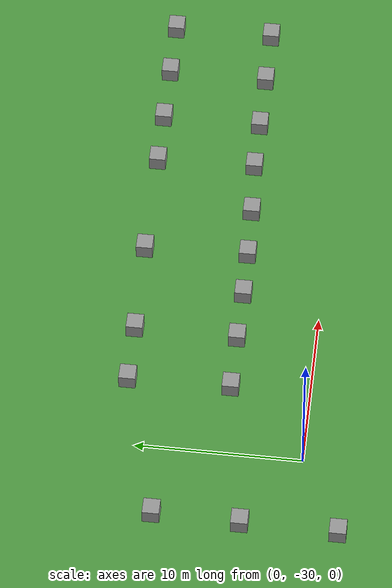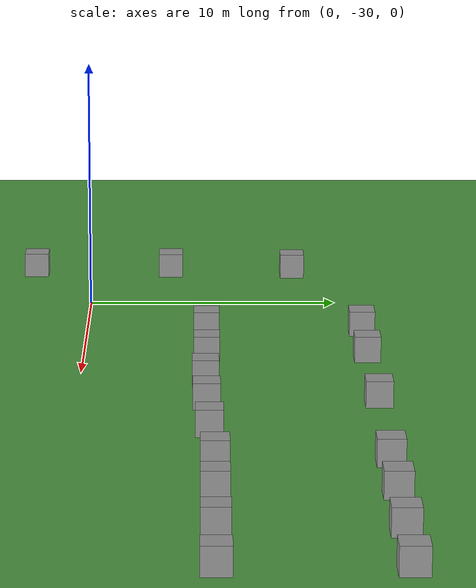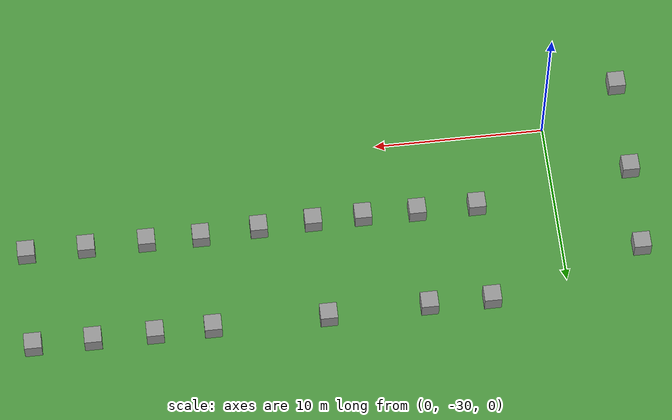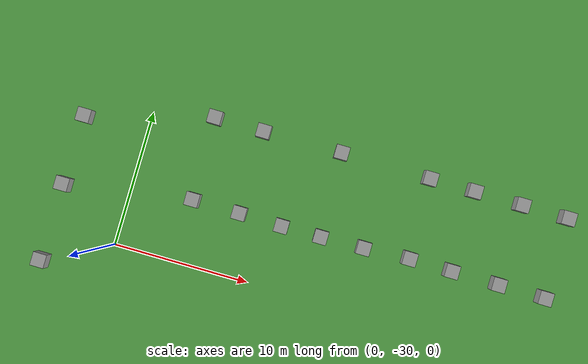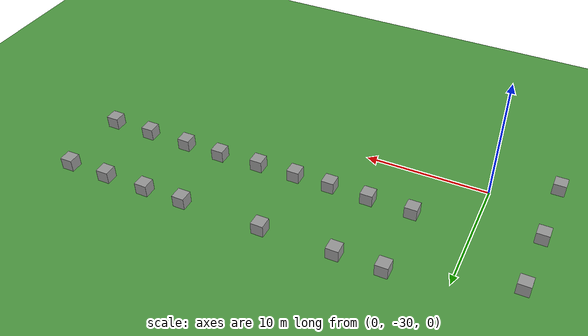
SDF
<sdf version="1.4">
 <world name="default">
  <model name="ground_plane">
   <static>1</static>
   <link name="link">
    <collision name="collision">
     <geometry><plane><normal>0 0 1</normal><size>10000 10000</size></plane></geometry>
     <surface><friction><ode><mu>100</mu><mu2>50</mu2></ode></friction></surface>
    </collision>
    <visual name="visual">
     <cast_shadows>0</cast_shadows>
     <geometry><plane><normal>0 0 1</normal><size>10000 10000</size></plane></geometry>
     <material>
      <script>
       <uri>model://ds_grass_background/materials/scripts</uri>
       <uri>model://ds_grass_background/materials/textures</uri>
       <name>GrassBackground</name>
      </script>
     </material>
    </visual>
    <velocity_decay><linear>0</linear><angular>0</angular></velocity_decay>
   </link>
  </model>
  <model name="unit_box_13">
   <pose>4.50785 -19.0975 0.5 0 -0 0</pose>
   <link name="link">
    <inertial>
     <mass>1</mass>
     <inertia><ixx>1</ixx><ixy>0</ixy><ixz>0</ixz><iyy>1</iyy><iyz>0</iyz><izz>1</izz></inertia>
    </inertial>
    <collision name="collision"><geometry><box><size>2.00438 3.93881 1</size></box></geometry></collision>
    <visual name="visual">
     <geometry><box><size>1 1 1</size></box></geometry>
     <material>
      <script><uri>file://media/materials/scripts/gazebo.material</uri><name>Gazebo/Grey</name></script>
     </material>
    </visual>
    <velocity_decay><linear>0</linear><angular>0</angular></velocity_decay>
   </link>
   <static>0</static>
  </model>
  <model name="unit_box_14">
   <pose>8.15949 -19.0902 0.5 0 -0 0</pose>
   <link name="link">
    <inertial>
     <mass>1</mass>
     <inertia><ixx>1</ixx><ixy>0</ixy><ixz>0</ixz><iyy>1</iyy><iyz>0</iyz><izz>1</izz></inertia>
    </inertial>
    <collision name="collision"><geometry><box><size>2.17638 3.82082 1</size></box></geometry></collision>
    <visual name="visual">
     <geometry><box><size>1 1 1</size></box></geometry>
     <material>
      <script><uri>file://media/materials/scripts/gazebo.material</uri><name>Gazebo/Grey</name></script>
     </material>
    </visual>
    <velocity_decay><linear>0</linear><angular>0</angular></velocity_decay>
   </link>
   <static>0</static>
  </model>
  <model name="unit_box_15">
   <pose>14 -19 0.5 0 -0 0</pose>
   <link name="link">
    <inertial>
     <mass>1</mass>
     <inertia><ixx>1</ixx><ixy>0</ixy><ixz>0</ixz><iyy>1</iyy><iyz>0</iyz><izz>1</izz></inertia>
    </inertial>
    <collision name="collision"><geometry><box><size>2.06333 3.7865 1</size></box></geometry></collision>
    <visual name="visual">
     <geometry><box><size>1 1 1</size></box></geometry>
     <material>
      <script><uri>file://media/materials/scripts/gazebo.material</uri><name>Gazebo/Grey</name></script>
     </material>
    </visual>
    <velocity_decay><linear>0</linear><angular>0</angular></velocity_decay>
   </link>
   <static>0</static>
  </model>
  <model name="unit_box_17">
   <pose>20.6639 -19.015 0.5 0 -0 0</pose>
   <link name="link">
    <inertial>
     <mass>1</mass>
     <inertia><ixx>1</ixx><ixy>0</ixy><ixz>0</ixz><iyy>1</iyy><iyz>0</iyz><izz>1</izz></inertia>
    </inertial>
    <collision name="collision"><geometry><box><size>2.25325 3.65217 1</size></box></geometry></collision>
    <visual name="visual">
     <geometry><box><size>1 1 1</size></box></geometry>
     <material>
      <script><uri>file://media/materials/scripts/gazebo.material</uri><name>Gazebo/Grey</name></script>
     </material>
    </visual>
    <velocity_decay><linear>0</linear><angular>0</angular></velocity_decay>
   </link>
   <static>0</static>
  </model>
  <model name="unit_box_18">
   <pose>24 -19 0.5 -0 -0 -0</pose>
   <link name="link">
    <inertial>
     <mass>1</mass>
     <inertia><ixx>1</ixx><ixy>0</ixy><ixz>0</ixz><iyy>1</iyy><iyz>0</iyz><izz>1</izz></inertia>
    </inertial>
    <collision name="collision"><geometry><box><size>2.33583 3.45833 1</size></box></geometry></collision>
    <visual name="visual">
     <geometry><box><size>1 1 1</size></box></geometry>
     <material>
      <script><uri>file://media/materials/scripts/gazebo.material</uri><name>Gazebo/Grey</name></script>
     </material>
    </visual>
    <velocity_decay><linear>0</linear><angular>0</angular></velocity_decay>
   </link>
   <static>0</static>
  </model>
  <model name="unit_box_19">
   <pose>27.5635 -19 0.5 0 -0 0</pose>
   <link name="link">
    <inertial>
     <mass>1</mass>
     <inertia><ixx>1</ixx><ixy>0</ixy><ixz>0</ixz><iyy>1</iyy><iyz>0</iyz><izz>1</izz></inertia>
    </inertial>
    <collision name="collision"><geometry><box><size>2.29132 3.43309 1</size></box></geometry></collision>
    <visual name="visual">
     <geometry><box><size>1 1 1</size></box></geometry>
     <material>
      <script><uri>file://media/materials/scripts/gazebo.material</uri><name>Gazebo/Grey</name></script>
     </material>
    </visual>
    <velocity_decay><linear>0</linear><angular>0</angular></velocity_decay>
   </link>
   <static>0</static>
  </model>
  <model name="unit_box_20">
   <pose>31 -19 0.5 -0 -0 -0</pose>
   <link name="link">
    <inertial>
     <mass>1</mass>
     <inertia><ixx>1</ixx><ixy>0</ixy><ixz>0</ixz><iyy>1</iyy><iyz>0</iyz><izz>1</izz></inertia>
    </inertial>
    <collision name="collision"><geometry><box><size>2.31816 3.40072 1</size></box></geometry></collision>
    <visual name="visual">
     <geometry><box><size>1 1 1</size></box></geometry>
     <material>
      <script><uri>file://media/materials/scripts/gazebo.material</uri><name>Gazebo/Grey</name></script>
     </material>
    </visual>
    <velocity_decay><linear>0</linear><angular>0</angular></velocity_decay>
   </link>
   <static>0</static>
  </model>
  <model name="unit_box_36">
   <pose>4.58657 -25.251 0.5 -0 -0 -0</pose>
   <link name="link">
    <inertial>
     <mass>1</mass>
     <inertia><ixx>1</ixx><ixy>0</ixy><ixz>0</ixz><iyy>1</iyy><iyz>0</iyz><izz>1</izz></inertia>
    </inertial>
    <collision name="collision"><geometry><box><size>1.94371 3.61589 1</size></box></geometry></collision>
    <visual name="visual">
     <geometry><box><size>1 1 1</size></box></geometry>
     <material>
      <script><uri>file://media/materials/scripts/gazebo.material</uri><name>Gazebo/Grey</name></script>
     </material>
    </visual>
    <velocity_decay><linear>0</linear><angular>0</angular></velocity_decay>
   </link>
   <static>0</static>
  </model>
  <model name="unit_box_37">
   <pose>8.10312 -25.253 0.5 0 -0 0</pose>
   <link name="link">
    <inertial>
     <mass>1</mass>
     <inertia><ixx>1</ixx><ixy>0</ixy><ixz>0</ixz><iyy>1</iyy><iyz>0</iyz><izz>1</izz></inertia>
    </inertial>
    <collision name="collision"><geometry><box><size>2.25009 3.86642 1</size></box></geometry></collision>
    <visual name="visual">
     <geometry><box><size>1 1 1</size></box></geometry>
     <material>
      <script><uri>file://media/materials/scripts/gazebo.material</uri><name>Gazebo/Grey</name></script>
     </material>
    </visual>
    <velocity_decay><linear>0</linear><angular>0</angular></velocity_decay>
   </link>
   <static>0</static>
  </model>
  <model name="unit_box_38">
   <pose>11.2953 -25.2988 0.5 0 -0 0</pose>
   <link name="link">
    <inertial>
     <mass>1</mass>
     <inertia><ixx>1</ixx><ixy>0</ixy><ixz>0</ixz><iyy>1</iyy><iyz>0</iyz><izz>1</izz></inertia>
    </inertial>
    <collision name="collision"><geometry><box><size>1.96006 3.82266 1</size></box></geometry></collision>
    <visual name="visual">
     <geometry><box><size>1 1 1</size></box></geometry>
     <material>
      <script><uri>file://media/materials/scripts/gazebo.material</uri><name>Gazebo/Grey</name></script>
     </material>
    </visual>
    <velocity_decay><linear>0</linear><angular>0</angular></velocity_decay>
   </link>
   <static>0</static>
  </model>
  <model name="unit_box_39">
   <pose>14.2245 -25.2621 0.5 0 -0 0</pose>
   <link name="link">
    <inertial>
     <mass>1</mass>
     <inertia><ixx>1</ixx><ixy>0</ixy><ixz>0</ixz><iyy>1</iyy><iyz>0</iyz><izz>1</izz></inertia>
    </inertial>
    <collision name="collision"><geometry><box><size>2.10899 3.68755 1</size></box></geometry></collision>
    <visual name="visual">
     <geometry><box><size>1 1 1</size></box></geometry>
     <material>
      <script><uri>file://media/materials/scripts/gazebo.material</uri><name>Gazebo/Grey</name></script>
     </material>
    </visual>
    <velocity_decay><linear>0</linear><angular>0</angular></velocity_decay>
   </link>
   <static>0</static>
  </model>
  <model name="unit_box_40">
   <pose>17.4225 -25.1712 0.5 0 -0 0</pose>
   <link name="link">
    <inertial>
     <mass>1</mass>
     <inertia><ixx>1</ixx><ixy>0</ixy><ixz>0</ixz><iyy>1</iyy><iyz>0</iyz><izz>1</izz></inertia>
    </inertial>
    <collision name="collision"><geometry><box><size>2.28774 3.80927 1</size></box></geometry></collision>
    <visual name="visual">
     <geometry><box><size>1 1 1</size></box></geometry>
     <material>
      <script><uri>file://media/materials/scripts/gazebo.material</uri><name>Gazebo/Grey</name></script>
     </material>
    </visual>
    <velocity_decay><linear>0</linear><angular>0</angular></velocity_decay>
   </link>
   <static>0</static>
  </model>
  <model name="unit_box_41">
   <pose>20.8282 -24.9859 0.499998 0 1e-06 0</pose>
   <link name="link">
    <inertial>
     <mass>1</mass>
     <inertia><ixx>1</ixx><ixy>0</ixy><ixz>0</ixz><iyy>1</iyy><iyz>0</iyz><izz>1</izz></inertia>
    </inertial>
    <collision name="collision"><geometry><box><size>2.35602 3.84235 1</size></box></geometry></collision>
    <visual name="visual">
     <geometry><box><size>1 1 1</size></box></geometry>
     <material>
      <script><uri>file://media/materials/scripts/gazebo.material</uri><name>Gazebo/Grey</name></script>
     </material>
    </visual>
    <velocity_decay><linear>0</linear><angular>0</angular></velocity_decay>
   </link>
   <static>0</static>
  </model>
  <model name="unit_box_53">
   <pose>-4.59248 -21.5838 0.499998 0 1e-06 0</pose>
   <link name="link">
    <inertial>
     <mass>1</mass>
     <inertia><ixx>1</ixx><ixy>0</ixy><ixz>0</ixz><iyy>1</iyy><iyz>0</iyz><izz>1</izz></inertia>
    </inertial>
    <collision name="collision"><geometry><box><size>2.35555 3.83376 1</size></box></geometry></collision>
    <visual name="visual">
     <geometry><box><size>1 1 1</size></box></geometry>
     <material>
      <script><uri>file://media/materials/scripts/gazebo.material</uri><name>Gazebo/Grey</name></script>
     </material>
    </visual>
    <velocity_decay><linear>0</linear><angular>0</angular></velocity_decay>
   </link>
   <static>0</static>
  </model>
  <model name="unit_box_54">
   <pose>-4.72365 -26.7547 0.499994 0 -5e-06 -4e-06</pose>
   <link name="link">
    <inertial>
     <mass>1</mass>
     <inertia><ixx>1</ixx><ixy>0</ixy><ixz>0</ixz><iyy>1</iyy><iyz>0</iyz><izz>1</izz></inertia>
    </inertial>
    <collision name="collision"><geometry><box><size>2.47054 4.45394 1</size></box></geometry></collision>
    <visual name="visual">
     <geometry><box><size>1 1 1</size></box></geometry>
     <material>
      <script><uri>file://media/materials/scripts/gazebo.material</uri><name>Gazebo/Grey</name></script>
     </material>
    </visual>
    <velocity_decay><linear>0</linear><angular>0</angular></velocity_decay>
   </link>
   <static>0</static>
  </model>
  <model name="unit_box_55">
   <pose>-4.78603 -32.4916 0.5 0 -0 0</pose>
   <link name="link">
    <inertial>
     <mass>1</mass>
     <inertia><ixx>1</ixx><ixy>0</ixy><ixz>0</ixz><iyy>1</iyy><iyz>0</iyz><izz>1</izz></inertia>
    </inertial>
    <collision name="collision"><geometry><box><size>2.47823 4.06213 1</size></box></geometry></collision>
    <visual name="visual">
     <geometry><box><size>1 1 1</size></box></geometry>
     <material>
      <script><uri>file://media/materials/scripts/gazebo.material</uri><name>Gazebo/Grey</name></script>
     </material>
    </visual>
    <velocity_decay><linear>0</linear><angular>0</angular></velocity_decay>
   </link>
   <static>0</static>
  </model>
  <model name="unit_box_56">
   <pose>24 -25 0.5 0 -0 0</pose>
   <link name="link">
    <inertial>
     <mass>1</mass>
     <inertia><ixx>1</ixx><ixy>0</ixy><ixz>0</ixz><iyy>1</iyy><iyz>0</iyz><izz>1</izz></inertia>
    </inertial>
    <collision name="collision"><geometry><box><size>2.31866 3.84775 1</size></box></geometry></collision>
    <visual name="visual">
     <geometry><box><size>1 1 1</size></box></geometry>
     <material>
      <script><uri>file://media/materials/scripts/gazebo.material</uri><name>Gazebo/Grey</name></script>
     </material>
    </visual>
    <velocity_decay><linear>0</linear><angular>0</angular></velocity_decay>
   </link>
   <static>0</static>
  </model>
  <model name="unit_box_57">
   <pose>27.5161 -25 0.5 0 -0 0</pose>
   <link name="link">
    <inertial>
     <mass>1</mass>
     <inertia><ixx>1</ixx><ixy>0</ixy><ixz>0</ixz><iyy>1</iyy><iyz>0</iyz><izz>1</izz></inertia>
    </inertial>
    <collision name="collision"><geometry><box><size>2.46145 3.95337 1</size></box></geometry></collision>
    <visual name="visual">
     <geometry><box><size>1 1 1</size></box></geometry>
     <material>
      <script><uri>file://media/materials/scripts/gazebo.material</uri><name>Gazebo/Grey</name></script>
     </material>
    </visual>
    <velocity_decay><linear>0</linear><angular>0</angular></velocity_decay>
   </link>
   <static>0</static>
  </model>
  <model name="unit_box_58">
   <pose>31 -25 0.5 0 -0 0</pose>
   <link name="link">
    <inertial>
     <mass>1</mass>
     <inertia><ixx>1</ixx><ixy>0</ixy><ixz>0</ixz><iyy>1</iyy><iyz>0</iyz><izz>1</izz></inertia>
    </inertial>
    <collision name="collision"><geometry><box><size>2.41388 3.90801 1</size></box></geometry></collision>
    <visual name="visual">
     <geometry><box><size>1 1 1</size></box></geometry>
     <material>
      <script><uri>file://media/materials/scripts/gazebo.material</uri><name>Gazebo/Grey</name></script>
     </material>
    </visual>
    <velocity_decay><linear>0</linear><angular>0</angular></velocity_decay>
   </link>
   <static>0</static>
  </model>
 </world>
</sdf>
